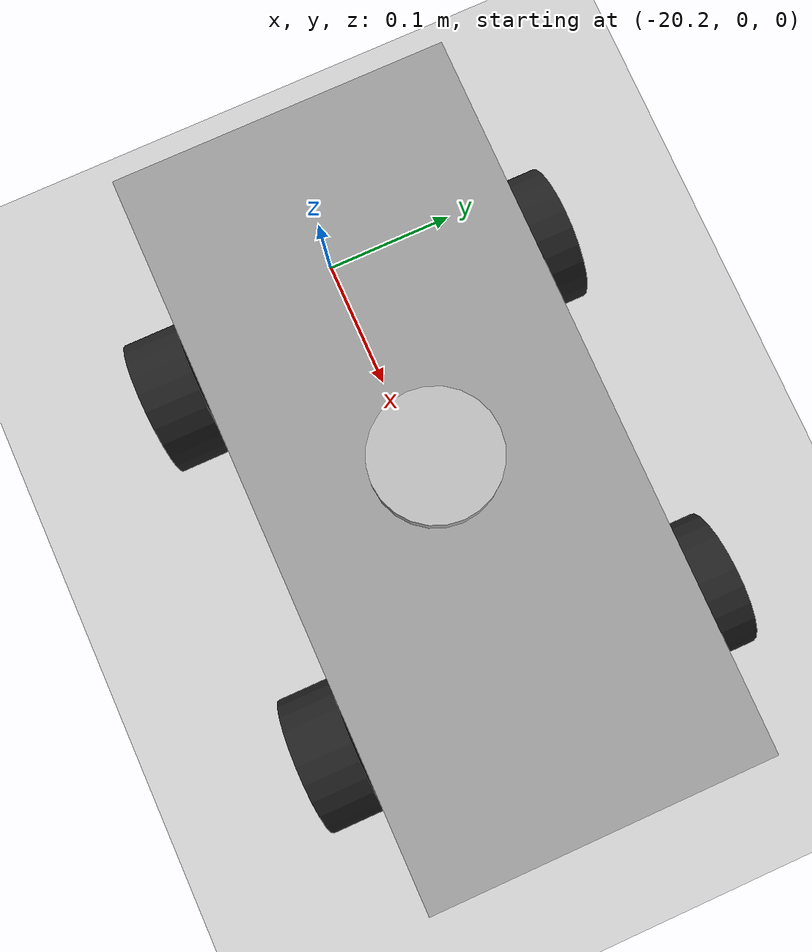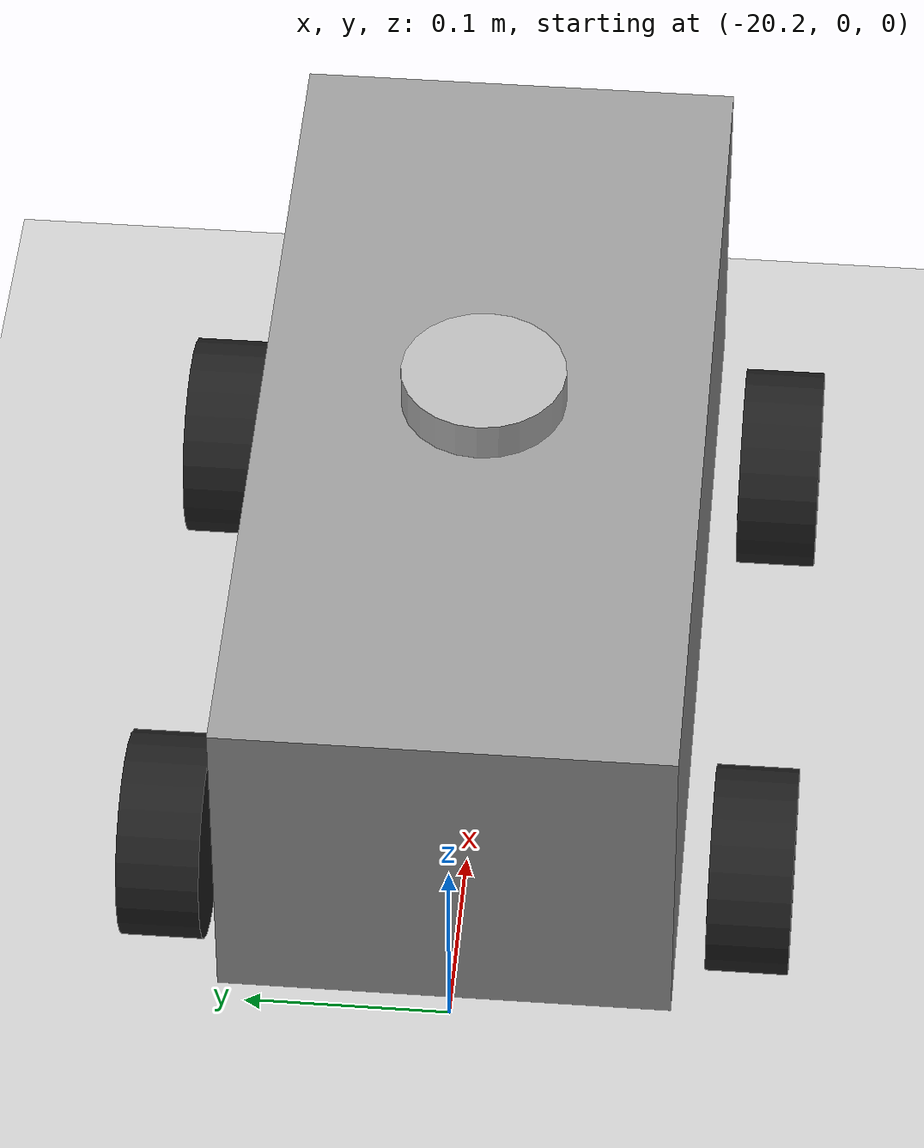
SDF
<sdf version="1.5">
 <world name="default">
  <include><uri>model://sun</uri></include>
  <include><uri>model://ground_plane</uri></include>
  <model name="teapot0">
   <pose>-20 0 0 0 0 0</pose>
   <include><uri>model://teapot</uri></include>
   <plugin name="teapot_control" filename="libcar_control_plugin.so"/>
  </model>
 </world>
</sdf>

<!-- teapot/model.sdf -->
<sdf version="1.2">
  <model name="teapot">
    <link name="chassis">
      <pose>0 0 0.135  0 0 0</pose>
      <inertial>
        <pose>0.04650000000000001 0 0  0 0 0</pose>
        <mass>2.0</mass>
        <inertia>
          <ixx>0.012592666666666665</ixx>
          <iyy>0.04085416666666667</iyy>
          <izz>0.043813500000000005</izz>
          <ixy>0</ixy>
          <ixz>0</ixz>
          <iyz>0</iyz>
        </inertia>
      </inertial>
      <collision name="collision">
        <geometry>
          <box>
            <size>0.465 0.216 0.17</size>
          </box>
        </geometry>
      </collision>
      <visual name="visual">
        <geometry>
          <box>
            <size>0.465 0.216 0.17</size>
          </box>
        </geometry>
        <material>
          <script>
            <uri>file://media/materials/scripts/gazebo.material</uri>
            <name>Gazebo/Grey</name>
          </script>
        </material>
      </visual>
    </link>

    <link name="wheel_fl">
      <pose>
        0.1395 0.14200000000000002 0.05
        -1.5707963267948966 -0.08726646259971647 0
      </pose>
      <inertial>
        <mass>0.25</mass>
        <inertia>
          <ixx>0.00018958333333333338</ixx>
          <iyy>0.00018958333333333338</iyy>
          <izz>0.00031250000000000006</izz>
          <ixy>0</ixy>
          <ixz>0</ixz>
          <iyz>0</iyz>
        </inertia>
      </inertial>
      <collision name="collision">
        <geometry>
          <cylinder>
            <radius>0.05</radius>
            <length>0.04</length>
          </cylinder>
        </geometry>
      </collision>
      <visual name="visual">
        <geometry>
          <cylinder>
            <radius>0.05</radius>
            <length>0.04</length>
          </cylinder>
        </geometry>
        <material>
          <script>
            <uri>file://media/materials/scripts/gazebo.material</uri>
            <name>Gazebo/Black</name>
          </script>
        </material>
      </visual>
    </link>

    <joint name="wheel_fl_steer" type="universal">
      <parent>chassis</parent>
      <child>wheel_fl</child>
      <axis>
        <xyz>0 0 -1</xyz>
        <limit>
          <lower>-1.3089969389957472</lower>
          <upper>1.3089969389957472</upper>
        </limit>
      </axis>
      <axis2>
        <xyz>0 1</xyz>
      </axis2>
    </joint>

    <link name="wheel_fr">
      <pose>
        0.1395 -0.14200000000000002 0.05
        -1.5707963267948966 -0.08726646259971647 0
      </pose>
      <inertial>
        <mass>0.25</mass>
        <inertia>
          <ixx>0.00018958333333333338</ixx>
          <iyy>0.00018958333333333338</iyy>
          <izz>0.00031250000000000006</izz>
          <ixy>0</ixy>
          <ixz>0</ixz>
          <iyz>0</iyz>
        </inertia>
      </inertial>
      <collision name="collision">
        <geometry>
          <cylinder>
            <radius>0.05</radius>
            <length>0.04</length>
          </cylinder>
        </geometry>
      </collision>
      <visual name="visual">
        <geometry>
          <cylinder>
            <radius>0.05</radius>
            <length>0.04</length>
          </cylinder>
        </geometry>
        <material>
          <script>
            <uri>file://media/materials/scripts/gazebo.material</uri>
            <name>Gazebo/Black</name>
          </script>
        </material>
      </visual>
    </link>

    <joint name="wheel_fr_steer" type="universal">
      <parent>chassis</parent>
      <child>wheel_fr</child>
      <axis>
        <xyz>0 0 -1</xyz>
        <limit>
          <lower>-1.3089969389957472</lower>
          <upper>1.3089969389957472</upper>
        </limit>
      </axis>
      <axis2>
        <xyz>0 1</xyz>
      </axis2>
    </joint>

    <link name="wheel_rl">
      <pose>
       -0.1395 0.14200000000000002 0.05
       -1.5707963267948966 0 0
      </pose>
      <inertial>
        <mass>0.25</mass>
        <inertia>
          <ixx>0.00018958333333333338</ixx>
          <iyy>0.00018958333333333338</iyy>
          <izz>0.00031250000000000006</izz>
          <ixy>0</ixy>
          <ixz>0</ixz>
          <iyz>0</iyz>
        </inertia>
      </inertial>
      <collision name="collision">
        <geometry>
          <cylinder>
            <radius>0.05</radius>
            <length>0.04</length>
          </cylinder>
        </geometry>
      </collision>
      <visual name="visual">
        <geometry>
          <cylinder>
            <radius>0.05</radius>
            <length>0.04</length>
          </cylinder>
        </geometry>
        <material>
          <script>
            <uri>file://media/materials/scripts/gazebo.material</uri>
            <name>Gazebo/Black</name>
          </script>
        </material>
      </visual>
    </link>
    <joint name="wheel_rl_drive" type="revolute">
      <parent>chassis</parent>
      <child>wheel_rl</child>
      <axis>
        <xyz>0 1 0</xyz>
      </axis>
    </joint>

    <link name="wheel_rr">
      <pose>
       -0.1395 -0.14200000000000002 0.05
       -1.5707963267948966 0 0
      </pose>
      <inertial>
        <mass>0.25</mass>
        <inertia>
          <ixx>0.00018958333333333338</ixx>
          <iyy>0.00018958333333333338</iyy>
          <izz>0.00031250000000000006</izz>
          <ixy>0</ixy>
          <ixz>0</ixz>
          <iyz>0</iyz>
        </inertia>
      </inertial>
      <collision name="collision">
        <geometry>
          <cylinder>
            <radius>0.05</radius>
            <length>0.04</length>
          </cylinder>
        </geometry>
      </collision>
      <visual name="visual">
        <geometry>
          <cylinder>
            <radius>0.05</radius>
            <length>0.04</length>
          </cylinder>
        </geometry>
        <material>
          <script>
            <uri>file://media/materials/scripts/gazebo.material</uri>
            <name>Gazebo/Black</name>
          </script>
        </material>
      </visual>
    </link>
    <joint name="wheel_rr_drive" type="revolute">
      <parent>chassis</parent>
      <child>wheel_rr</child>
      <axis>
        <xyz>0 1 0</xyz>
      </axis>
    </joint>

    <include>
      <uri>model://rplidar_a2</uri>
      <pose>
        0.0 0.0 0.22000000000000003
        0.0 0.0 0.0
      </pose>
    </include>
    <joint name="lidar_joint" type="fixed">
      <child>rplidar_a2::link</child>
      <parent>chassis</parent>
    </joint>
  </model>
</sdf>

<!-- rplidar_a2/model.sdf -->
<sdf version="1.7">
  <model name="rplidar_a2">
    <pose>0 0 0.02 0 0 0</pose>
    <link name="link">
      <inertial>
        <mass>0.1</mass>
      </inertial>
      <visual name="visual">
        <geometry>
          <cylinder>
            <radius>0.04</radius>
            <length>0.04</length>
          </cylinder>
        </geometry>
      </visual>
      <collision name="collision-base">
        <pose>0 0 -0.0145 0 0 0</pose>
        <geometry>
          <box>
            <size>0.05 0.05 0.041</size>
          </box>
        </geometry>
      </collision>
      <collision name="collision-top">
        <pose>0 0 0.0205 0 0 0</pose>
        <geometry>
          <cylinder>
            <radius>0.021</radius>
            <length>0.029</length>
          </cylinder>
        </geometry>
      </collision>
      <sensor name="laser" type="ray">
        <pose>
          0.01 0.0 0.0175
          0.0 -0.0 0.0
        </pose>
        <ray>
          <scan>
            <horizontal>
              <samples>360</samples>
              <resolution>1</resolution>
              <min_angle>-3.14159265</min_angle>
              <max_angle>3.14159265</max_angle>
            </horizontal>
          </scan>
          <range>
            <min>0.08</min>
            <max>9.0</max>
            <resolution>0.01</resolution>
          </range>
        </ray>
        <plugin name="laser" filename="libRayPlugin.so" />
        <always_on>1</always_on>
        <update_rate>10</update_rate>
        <visualize>true</visualize>
      </sensor>
    </link>
  </model>
</sdf>
